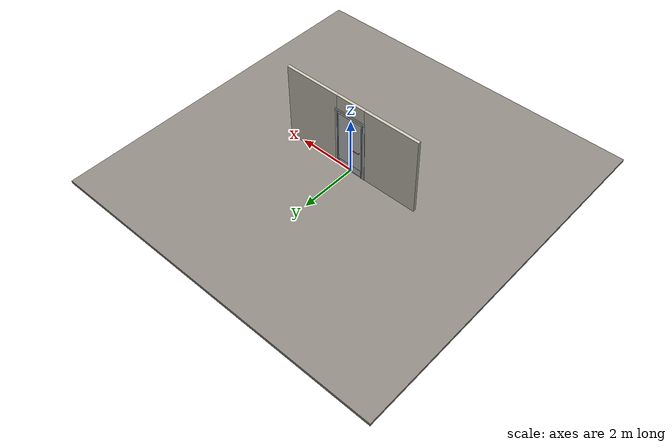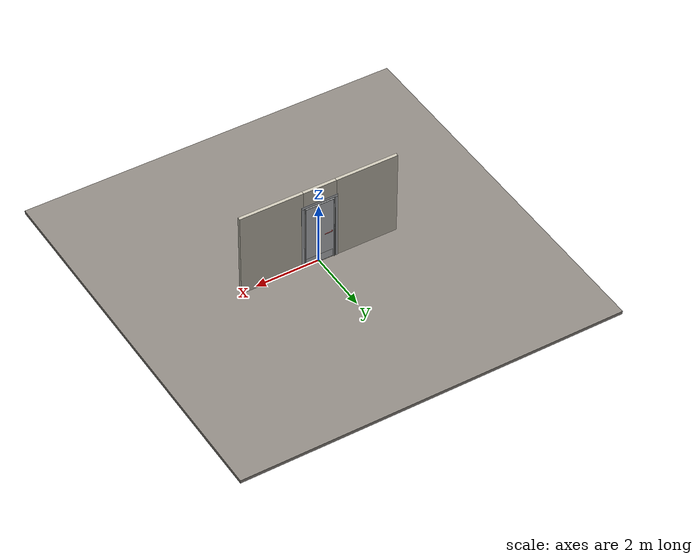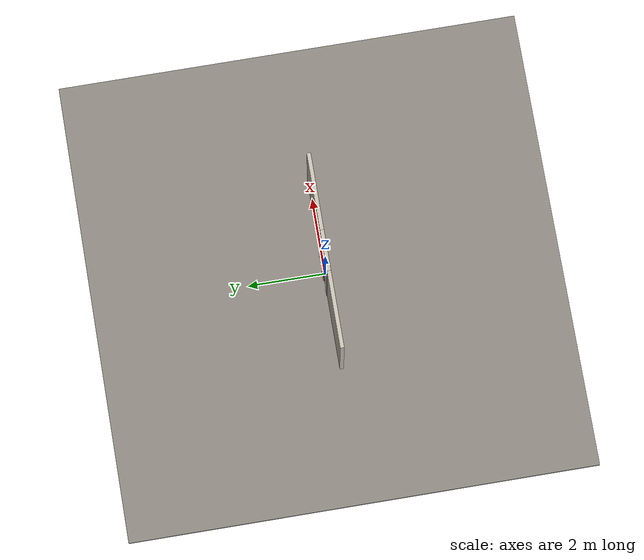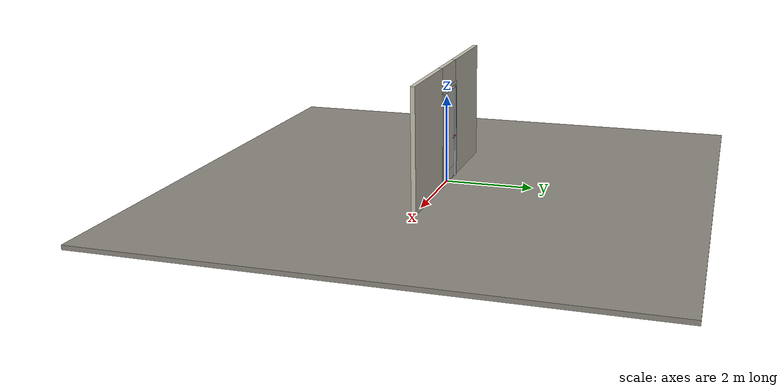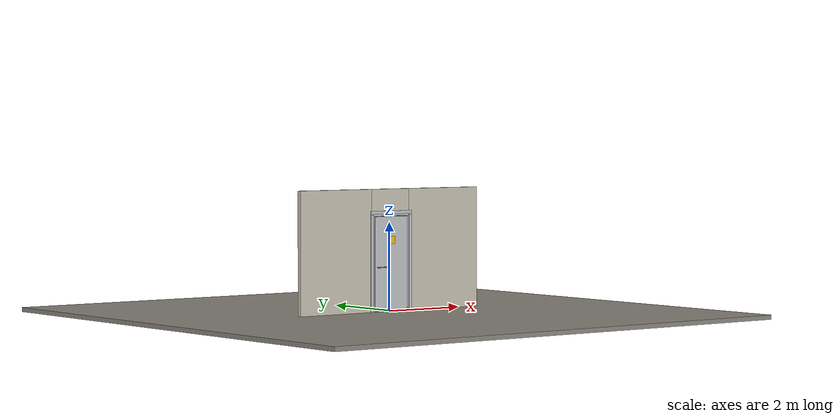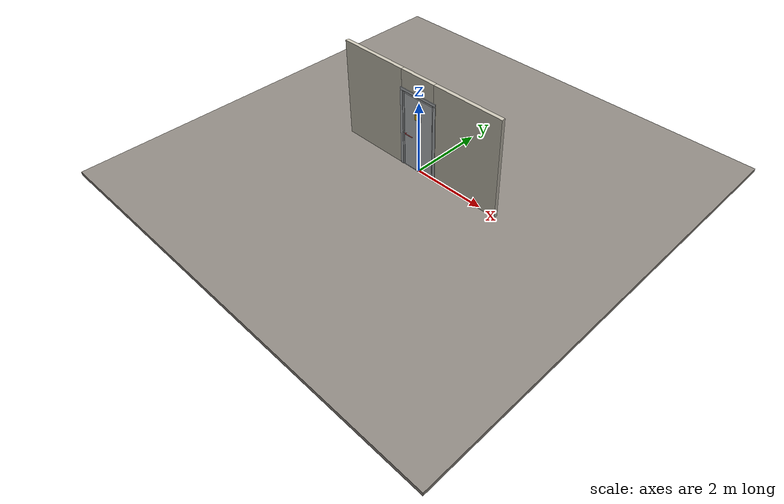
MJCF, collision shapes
<?xml version="1.0" ?>
<mujoco model="db0507_cold_storage_full">
  <compiler angle="radian" meshdir="../../hardware" texturedir="../../textures" autolimits="true" inertiafromgeom="false"/>
  <option timestep="0.002" integrator="implicitfast" cone="elliptic" impratio="10" noslip_iterations="3">
    <flag multiccd="enable"/>
  </option>
  <size memory="16M"/>
  <default>
    <geom condim="4" solref="0.005 1" solimp="0.95 0.99 0.001"/>
    <joint solreflimit="0.005 1" solimplimit="0.95 0.99 0.001"/>
    <tendon solreflimit="0.005 1"/>
    <equality solref="0.002 1"/>
  </default>
  <visual>
    <headlight ambient="0.4 0.4 0.4" diffuse="0.7 0.7 0.7" specular="0.2 0.2 0.2"/>
    <quality shadowsize="4096"/>
    <map znear="0.01" zfar="60"/>
  </visual>
  <asset>
    <mesh name="hinge_05d9a38dfa" file="hinge_05d9a38dfa.obj"/>
    <mesh name="hinge_jamb_953fb56768" file="hinge_jamb_953fb56768.obj"/>
    <mesh name="lever_40740b93f7" file="lever_40740b93f7.obj"/>
    <material name="mat_floor" rgba="0.55 0.53 0.5 1" specular="0.2" shininess="0.15" reflectance="0"/>
    <material name="mat_wall" rgba="0.78 0.76 0.7 1" specular="0.2" shininess="0.1" reflectance="0"/>
    <material name="mat_hinge" rgba="0.55 0.56 0.58 1" specular="0.8" shininess="0.55" reflectance="0.4"/>
    <material name="mat_leaf" rgba="0.75 0.76 0.77 1" specular="0.8" shininess="0.65" reflectance="0.4"/>
    <material name="mat_op_chrome" rgba="0.9 0.9 0.92 1" specular="0.8" shininess="0.9" reflectance="0.4"/>
    <material name="mat_trim" rgba="0.85 0.66 0.3 1" specular="0.8" shininess="0.75" reflectance="0.4"/>
    <material name="mat_bolt" rgba="0.75 0.76 0.77 1" specular="0.8" shininess="0.65" reflectance="0.4"/>
    <material name="mat_frame" rgba="0.75 0.76 0.77 1" specular="0.8" shininess="0.65" reflectance="0.4"/>
    <material name="mat_seal" rgba="0.1 0.1 0.1 1" specular="0.2" shininess="0.1" reflectance="0"/>
    <material name="mat_threshold" rgba="0.8 0.81 0.83 1" specular="0.8" shininess="0.6" reflectance="0.4"/>
    <material name="mat_kick" rgba="0.75 0.76 0.77 1" specular="0.8" shininess="0.65" reflectance="0.4"/>
    <material name="mat_placard" rgba="0.95 0.75 0.05 1" specular="0.2" shininess="0.5" reflectance="0"/>
    <texture name="skybox" type="skybox" builtin="gradient" rgb1="0.6 0.7 0.85" rgb2="0.9 0.92 0.95" width="256" height="256"/>
  </asset>
  <worldbody>
    <light name="sun" pos="1.5 -2.5 4" dir="-0.3 0.5 -0.8" directional="true" diffuse="0.8 0.8 0.8" specular="0.3 0.3 0.3" castshadow="true"/>
    <light name="fill" pos="-1.5 2.5 3" dir="0.3 -0.5 -0.7" directional="true" diffuse="0.35 0.35 0.4" castshadow="false"/>
    <camera name="robot_view" pos="0 -2.640625 1.814375" xyaxes="1 0 0 0 0.26963 0.962964" fovy="52"/>
    <camera name="far_view" pos="0 2.640625 1.814375" xyaxes="-1 0 0 0 -0.26963 0.962964" fovy="52"/>
    <camera name="iso" pos="-2.006875 -2.218125 2.236875" xyaxes="0.741536 -0.670913 0 0.242917 0.268487 0.932151" fovy="46"/>
    <camera name="detail_handle" pos="-0.003 -0.905 1.28" xyaxes="0.97561 0.219512 0 -0.070934 0.315262 0.94635" fovy="38"/>
    <geom name="floor" type="box" size="6 6 0.05" pos="0 0 -0.05" material="mat_floor" group="0" contype="1" conaffinity="1" friction="0.8 0.005 0.0001" density="2400"/>
    <geom name="wall_left" type="box" size="0.98 0.05 1.375" pos="-1.52 0 1.375" material="mat_wall" group="0" contype="1" conaffinity="1" friction="0.6 0.005 0.0001" density="800"/>
    <geom name="wall_right" type="box" size="0.995 0.05 1.375" pos="1.505 0 1.375" material="mat_wall" group="0" contype="1" conaffinity="1" friction="0.6 0.005 0.0001" density="800"/>
    <geom name="wall_header" type="box" size="0.525 0.05 0.2625" pos="-0.015 0 2.4875" material="mat_wall" group="0" contype="1" conaffinity="1" friction="0.6 0.005 0.0001" density="800"/>
    <geom name="hinge_0_jamb" type="mesh" mesh="hinge_jamb_953fb56768" pos="0.462 -0.057 0.267" quat="0 0 1 0" material="mat_hinge" group="1" contype="0" conaffinity="0" density="7850"/>
    <geom name="hinge_1_jamb" type="mesh" mesh="hinge_jamb_953fb56768" pos="0.462 -0.057 1.9504" quat="0 0 1 0" material="mat_hinge" group="1" contype="0" conaffinity="0" density="7850"/>
    <geom name="jamb_hinge" type="box" size="0.0225 0.05 1.075" pos="0.4875 0 1.075" material="mat_frame" group="0" contype="1" conaffinity="1" friction="0.6 0.005 0.0001" density="300"/>
    <geom name="strike_1000_wall_n" type="box" size="0.0375 0.02125 0.019" pos="-0.5025 0.02875 1" material="mat_frame" group="0" contype="1" conaffinity="1" friction="0.6 0.005 0.0001" density="300"/>
    <geom name="strike_1000_wall_p" type="box" size="0.0375 0.008 0.019" pos="-0.5025 -0.0155 1" material="mat_frame" group="0" contype="1" conaffinity="1" friction="0.6 0.005 0.0001" density="300"/>
    <geom name="strike_1000_ramp" type="box" size="0.0375 0.023512 0.019" pos="-0.505582 -0.041168 1" quat="0.997211 0 0 -0.074638" material="mat_frame" group="0" contype="1" conaffinity="1" friction="0.12 0.005 0.0001" density="300"/>
    <geom name="strike_1000_ramp_n" type="box" size="0.0375 0.023512 0.019" pos="-0.505582 0.029168 1" quat="0.997211 0 0 0.074638" material="mat_frame" group="0" contype="1" conaffinity="1" friction="0.12 0.005 0.0001" density="300"/>
    <geom name="strike_1000_back" type="box" size="0.0325 0.0075 0.019" pos="-0.5075 0 1" material="mat_frame" group="0" contype="1" conaffinity="1" friction="0.6 0.005 0.0001" density="300"/>
    <geom name="jamb_strike_0" type="box" size="0.0375 0.05 0.4905" pos="-0.5025 0 0.4905" material="mat_frame" group="0" contype="1" conaffinity="1" friction="0.6 0.005 0.0001" density="300"/>
    <geom name="jamb_strike_1" type="box" size="0.0375 0.05 0.5655" pos="-0.5025 0 1.5845" material="mat_frame" group="0" contype="1" conaffinity="1" friction="0.6 0.005 0.0001" density="300"/>
    <geom name="jamb_head" type="box" size="0.525 0.05 0.0225" pos="-0.015 0 2.1725" material="mat_frame" group="0" contype="1" conaffinity="1" friction="0.6 0.005 0.0001" density="300"/>
    <geom name="head_stud" type="box" size="0.525 0.05 0.015" pos="-0.015 0 2.21" material="mat_wall" group="0" contype="1" conaffinity="1" friction="0.6 0.005 0.0001" density="500"/>
    <geom name="stop_hinge" type="box" size="0.0055 0.016 1.075" pos="0.4595 0.0665 1.075" material="mat_frame" group="0" contype="1" conaffinity="1" friction="0.6 0.005 0.0001" density="300"/>
    <geom name="stop_strike" type="box" size="0.0055 0.016 1.075" pos="-0.4595 0.0665 1.075" material="mat_frame" group="0" contype="1" conaffinity="1" friction="0.6 0.005 0.0001" density="300"/>
    <geom name="stop_head" type="box" size="0.465 0.016 0.0055" pos="0 0.0665 2.1445" material="mat_frame" group="0" contype="1" conaffinity="1" friction="0.6 0.005 0.0001" density="300"/>
    <geom name="seal_hinge" type="box" size="0.004 0.006 1.075" pos="0.462 0.056 1.075" material="mat_seal" group="1" contype="0" conaffinity="0" density="1100"/>
    <geom name="seal_strike" type="box" size="0.004 0.006 1.075" pos="-0.462 0.056 1.075" material="mat_seal" group="1" contype="0" conaffinity="0" density="1100"/>
    <geom name="seal_head" type="box" size="0.445 0.006 0.008" pos="0 0.056 2.138" material="mat_seal" group="1" contype="0" conaffinity="0" density="1100"/>
    <geom name="casing_l_n" type="box" size="0.035 0.008 1.0975" pos="-0.54 -0.058 1.075" material="mat_frame" group="2" contype="0" conaffinity="0" density="300"/>
    <geom name="casing_r_n" type="box" size="0.035 0.008 1.0975" pos="0.54 -0.058 1.075" material="mat_frame" group="2" contype="0" conaffinity="0" density="300"/>
    <geom name="casing_h_n" type="box" size="0.575 0.008 0.035" pos="0 -0.058 2.225" material="mat_frame" group="2" contype="0" conaffinity="0" density="300"/>
    <geom name="casing_l_p" type="box" size="0.035 0.008 1.0975" pos="-0.54 0.058 1.075" material="mat_frame" group="2" contype="0" conaffinity="0" density="300"/>
    <geom name="casing_r_p" type="box" size="0.035 0.008 1.0975" pos="0.54 0.058 1.075" material="mat_frame" group="2" contype="0" conaffinity="0" density="300"/>
    <geom name="casing_h_p" type="box" size="0.575 0.008 0.035" pos="0 0.058 2.225" material="mat_frame" group="2" contype="0" conaffinity="0" density="300"/>
    <geom name="threshold" type="box" size="0.51 0.05 0.0065" pos="0 0 0.0065" material="mat_threshold" group="0" contype="1" conaffinity="1" friction="0.5 0.005 0.0001" density="2700"/>
    <site name="approach_point" pos="0 -1.5 0" quat="1 0 0 0" size="0.05" rgba="0.2 0.9 0.2 0.5" group="4"/>
    <site name="goal_point" pos="0 1.5 0" quat="1 0 0 0" size="0.05" rgba="0.2 0.9 0.2 0.5" group="4"/>
    <site name="door_plane_center" pos="0 0 1.075" quat="1 0 0 0" size="0.02" rgba="0.2 0.9 0.2 0.5" group="4"/>
    <body name="leaf_riser" pos="0.465 0 0">
      <inertial pos="-0.003 -0.057 0.055" mass="0.174012" quat="0 0.707107 0 0.707107" diaginertia="0.000017053 0.00002732 0.00002732"/>
      <joint name="leaf_rise" type="slide" axis="0 0 1" limited="true" range="0 0.0264" damping="1" armature="0.5"/>
      <geom name="leaf_riser_marker" type="cylinder" size="0.014 0.018" pos="-0.003 -0.057 0.055" material="mat_hinge" group="1" contype="0" conaffinity="0" density="7850"/>
      <body name="leaf" pos="0 0 0">
        <inertial pos="-0.44127 0.000895 1.024489" mass="46.14646" quat="0.503493 -0.494357 0.502361 0.499739" diaginertia="3.424402078 18.920405258 22.254739667"/>
        <joint name="leaf_hinge" type="hinge" axis="0 0 1" pos="-0.003 -0.057 0" limited="true" range="0 2.356194" solreflimit="0.02 1" damping="0.313793" frictionloss="3.948348" armature="0.02"/>
        <geom name="leaf_slab" type="box" size="0.455 0.05 1.0567" pos="-0.458 0 1.0737" material="mat_leaf" group="0" contype="1" conaffinity="1" friction="0.35 0.005 0.0001" density="1"/>
        <geom name="hinge_0" type="mesh" mesh="hinge_05d9a38dfa" pos="-0.003 -0.057 0.267" quat="0 0 1 0" material="mat_hinge" group="1" contype="0" conaffinity="0" density="7850"/>
        <geom name="hinge_1" type="mesh" mesh="hinge_05d9a38dfa" pos="-0.003 -0.057 1.9504" quat="0 0 1 0" material="mat_hinge" group="1" contype="0" conaffinity="0" density="7850"/>
        <geom name="kick_plate_p" type="box" size="0.425 0.0008 0.125" pos="-0.458 0.0508 0.152" material="mat_kick" group="2" contype="0" conaffinity="0" density="7900"/>
        <geom name="warning_placard" type="box" size="0.11 0.001 0.08" pos="-0.458 -0.051 1.60205" material="mat_placard" group="2" contype="0" conaffinity="0" density="1000"/>
        <site name="leaf_edge_mid" pos="-0.913 0 1.0567" quat="1 0 0 0" size="0.02" rgba="0.2 0.9 0.2 0.5" group="4"/>
        <body name="leaf_handle" pos="-0.848 0 1">
          <inertial pos="0.046153 0 0" mass="2.987827" quat="0.707107 0 0 -0.707107" diaginertia="0.018437997 0.023746754 0.040214564"/>
          <joint name="leaf_handle_hinge" type="hinge" axis="0 1 0" limited="true" range="0 0.5" damping="0.589936" frictionloss="0.07" stiffness="2.5" springref="-0.96" armature="0.01"/>
          <geom name="leaf_handle_spindle" type="cylinder" size="0.006 0.058" pos="0 0 0" quat="0.707107 -0.707107 0 0" material="mat_op_chrome" group="1" contype="0" conaffinity="0" density="7850"/>
          <geom name="leaf_handle_lever_n" type="mesh" mesh="lever_40740b93f7" pos="0 -0.05 0" quat="0 0 -0.707107 0.707107" material="mat_op_chrome" group="1" contype="0" conaffinity="0" density="3000"/>
          <geom name="leaf_handle_lever_col_n" type="capsule" size="0.0095 0.1155" pos="0.125 -0.105 0" quat="0.707107 0 0.707107 0" material="mat_op_chrome" group="3" contype="1" conaffinity="1" rgba="0.8 0.3 0.3 0.25" friction="0.7 0.01 0.0001" density="3000"/>
          <geom name="leaf_handle_hub_col_n" type="cylinder" size="0.012 0.022" pos="0 -0.08 0" quat="0.707107 -0.707107 0 0" material="mat_op_chrome" group="3" contype="1" conaffinity="1" rgba="0.8 0.3 0.3 0.25" friction="0.6 0.005 0.0001" density="3000"/>
          <geom name="leaf_handle_lever_p" type="mesh" mesh="lever_40740b93f7" pos="0 0.05 0" quat="0 0 0.707107 0.707107" material="mat_op_chrome" group="1" contype="0" conaffinity="0" density="3000"/>
          <geom name="leaf_handle_lever_col_p" type="capsule" size="0.0095 0.1155" pos="0.125 0.105 0" quat="0.707107 0 0.707107 0" material="mat_op_chrome" group="3" contype="1" conaffinity="1" rgba="0.8 0.3 0.3 0.25" friction="0.7 0.01 0.0001" density="3000"/>
          <geom name="leaf_handle_hub_col_p" type="cylinder" size="0.012 0.022" pos="0 0.08 0" quat="0.707107 -0.707107 0 0" material="mat_op_chrome" group="3" contype="1" conaffinity="1" rgba="0.8 0.3 0.3 0.25" friction="0.6 0.005 0.0001" density="3000"/>
          <site name="leaf_handle_grip_n" pos="0.2 -0.105 0" quat="1 0 0 0" size="0.012" rgba="0.2 0.9 0.2 0.5" group="4"/>
          <site name="leaf_handle_grip_p" pos="0.2 0.105 0" quat="1 0 0 0" size="0.012" rgba="0.2 0.9 0.2 0.5" group="4"/>
        </body>
        <body name="leaf_latch_bolt" pos="-0.913 0 1">
          <inertial pos="0.012 0 0" mass="0.030762" quat="0 0 -0.707107 0.707107" diaginertia="0.000000526 0.000002949 0.000002949"/>
          <joint name="leaf_latch_bolt_slide" type="slide" axis="1 0 0" limited="true" range="0 0.006" damping="2" frictionloss="0.3" stiffness="3000" springref="-0.004" armature="0.1"/>
          <geom name="leaf_latch_bolt_capsule" type="capsule" size="0.006 0.012" pos="0.012 0 0" quat="0.707107 0 -0.707107 0" material="mat_bolt" group="0" contype="1" conaffinity="1" friction="0.2 0.005 0.0001" density="8500"/>
        </body>
      </body>
    </body>
  </worldbody>
  <tendon>
    <fixed name="leaf_latch_bolt_coupling" limited="true" range="0 10">
      <joint joint="leaf_latch_bolt_slide" coef="1"/>
      <joint joint="leaf_handle_hinge" coef="-0.012766"/>
    </fixed>
  </tendon>
  <equality>
    <joint name="leaf_rise_couple" joint1="leaf_rise" joint2="leaf_hinge" polycoef="0 0.007639 0 0 0" active="true"/>
  </equality>
  <sensor>
    <jointpos name="leaf_hinge_pos" joint="leaf_hinge"/>
    <jointvel name="leaf_hinge_vel" joint="leaf_hinge"/>
    <jointpos name="leaf_handle_hinge_pos" joint="leaf_handle_hinge"/>
    <jointvel name="leaf_handle_hinge_vel" joint="leaf_handle_hinge"/>
    <jointpos name="leaf_latch_bolt_slide_pos" joint="leaf_latch_bolt_slide"/>
    <jointvel name="leaf_latch_bolt_slide_vel" joint="leaf_latch_bolt_slide"/>
  </sensor>
</mujoco>
